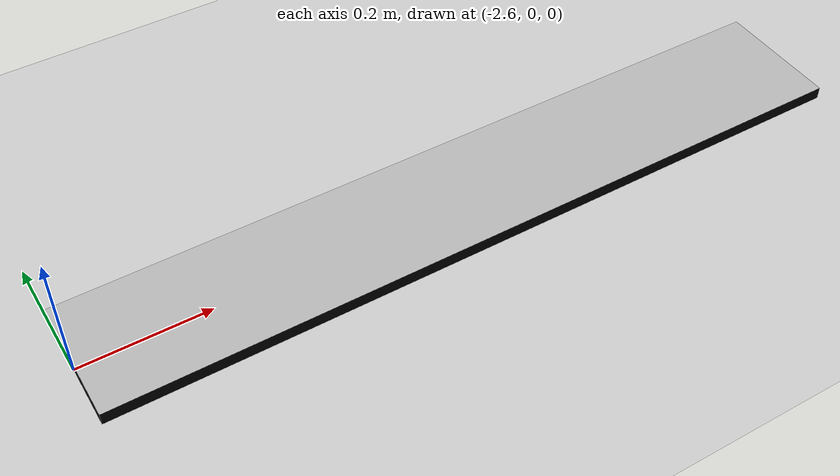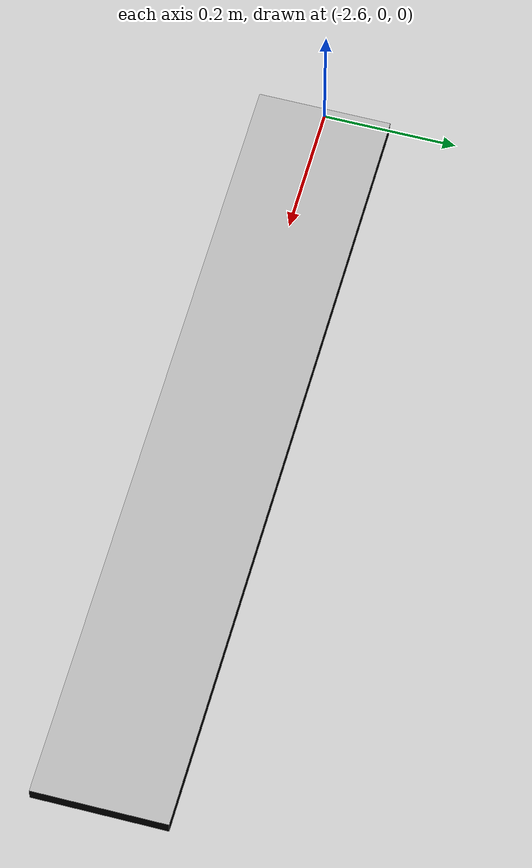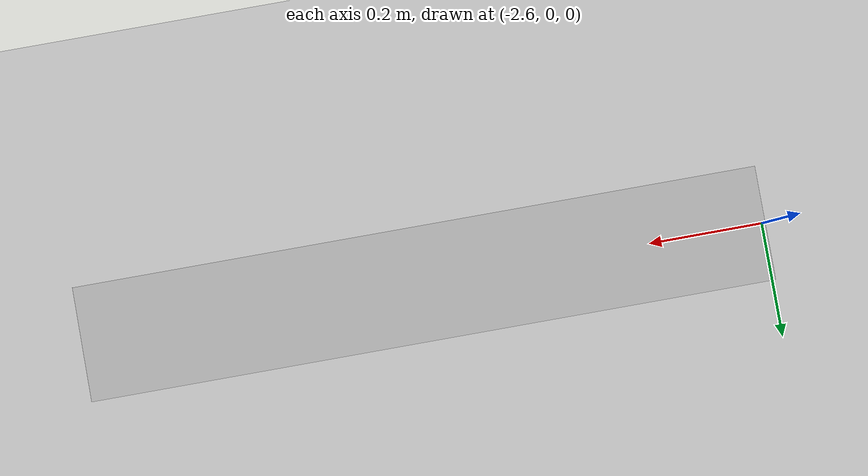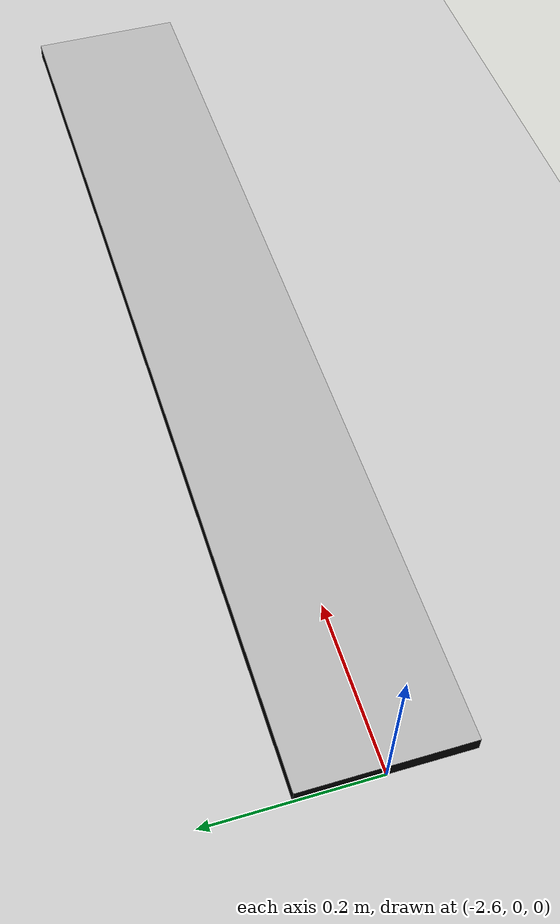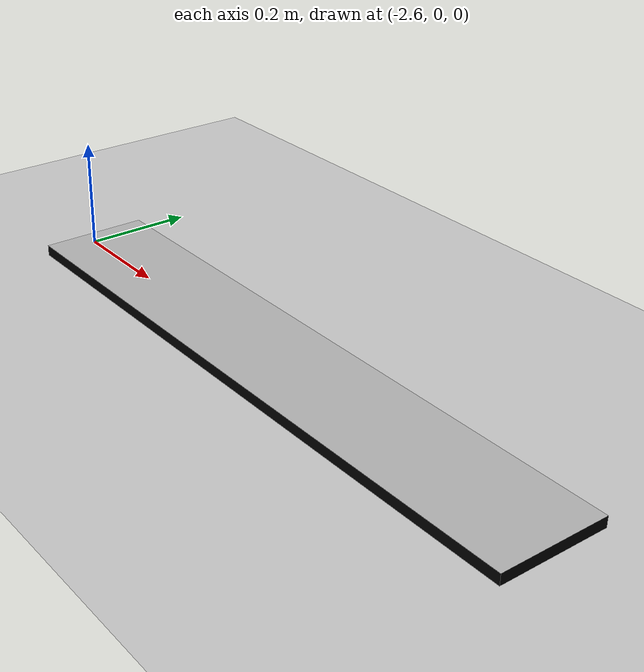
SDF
<sdf version="1.4">
    <world name="default">
      <include>
        <uri>model://sun</uri>
      </include>
      <include>
        <uri>model://ground_plane</uri>
      </include>
      <include>
        <uri>model://line</uri>
        <name>yellow line</name>
        <pose>-2.0 0 0 0 0 0</pose>
      </include>
      ...
    </world>
  </sdf>

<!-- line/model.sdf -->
<sdf version='1.5'>
<model name='line'>
<static>true</static>
<link name="link">
   <pose frame=''>0 0 0.01 0 0 0</pose>
  <visual name='lineV'>
    <cast_shadows>false</cast_shadows>
    <geometry>
      <mesh>
        <scale>1.0 1.0 1.0</scale>
        <uri>model://line/line.dae</uri>
      </mesh>
    </geometry>
    <material>
      <script>
        <name>start</name>
        <uri>model://line/line.dae</uri>
      </script>
    </material>
  </visual>
</link>
</model>
</sdf>
